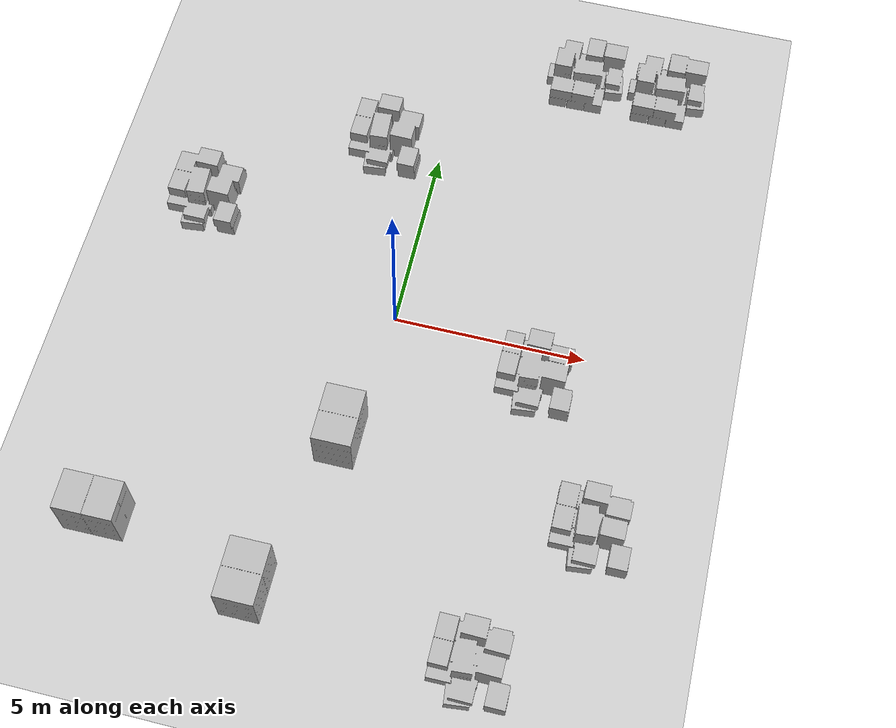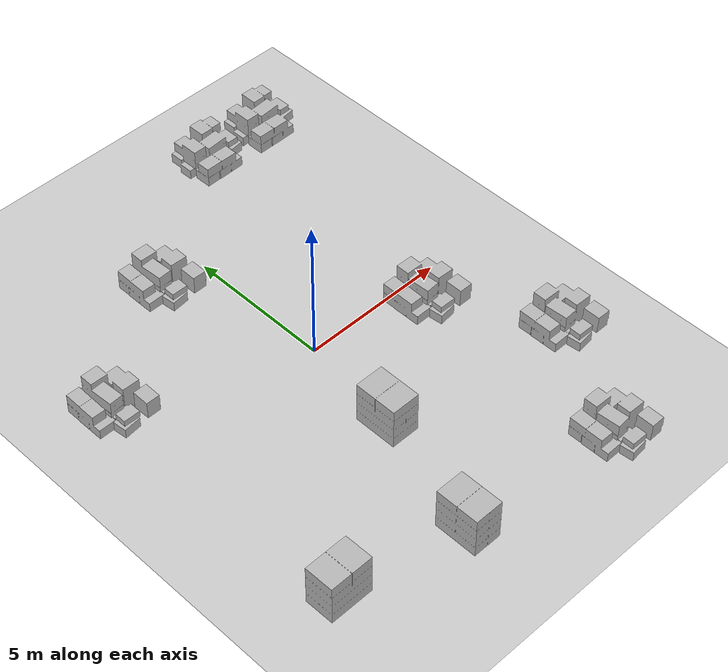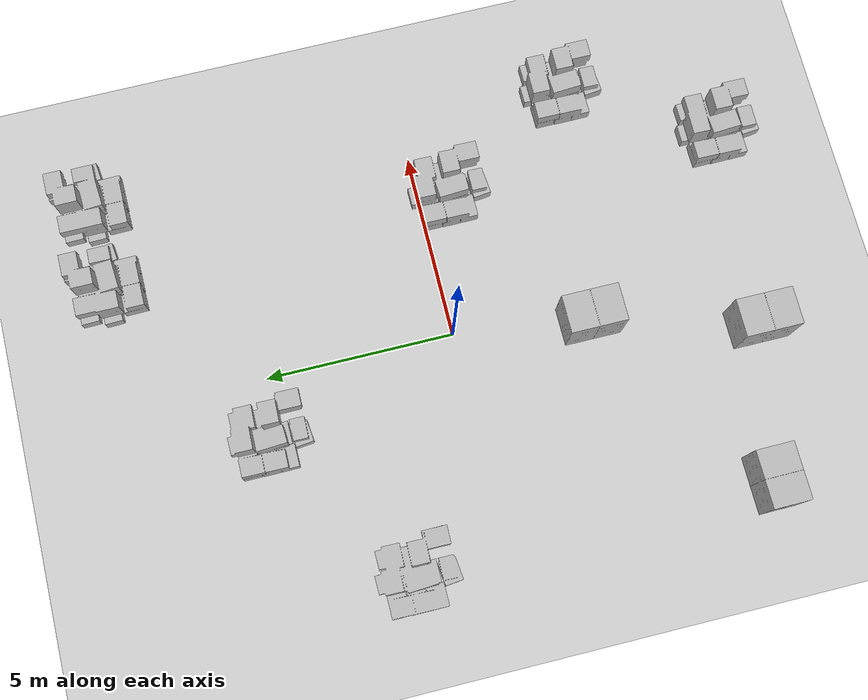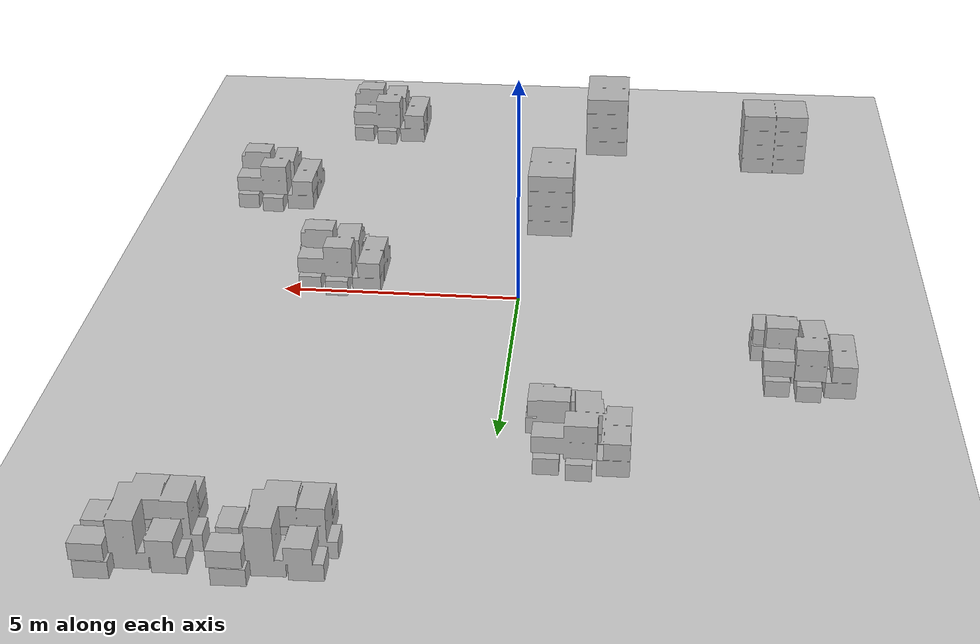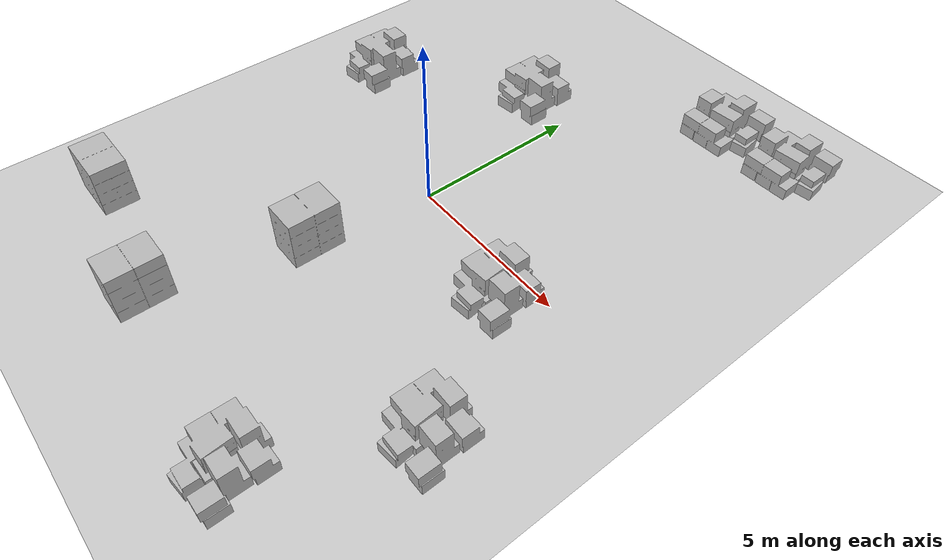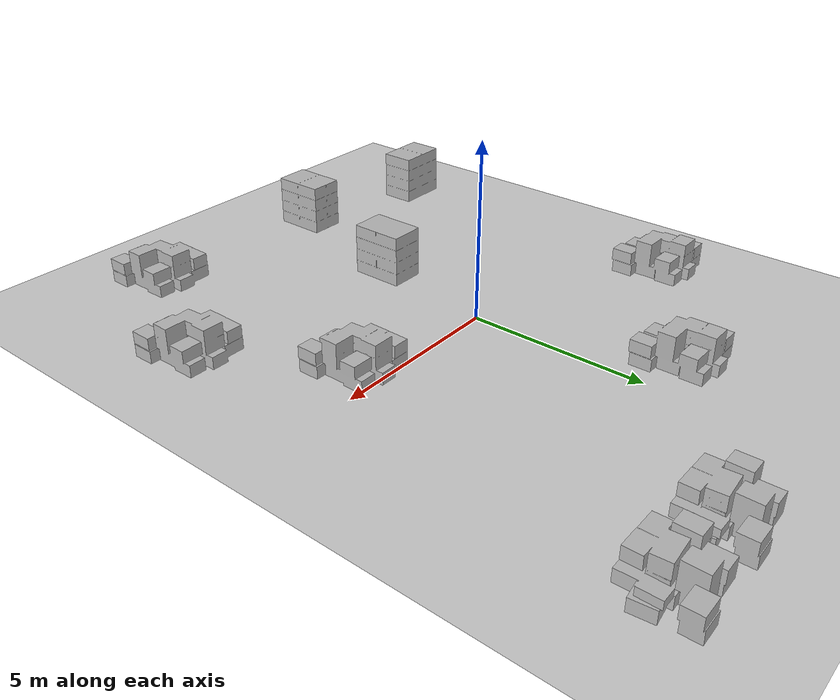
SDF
<sdf version="1.6">
 <world name="default">
  <model name="aws_robomaker_warehouse_ClutteringA_01_016">
   <include><uri>model://aws_robomaker_warehouse_ClutteringA_01</uri></include>
   <pose>5.708138 8.616844 -0.017477 0 0 0</pose>
  </model>
  <model name="aws_robomaker_warehouse_ClutteringA_01_017">
   <include><uri>model://aws_robomaker_warehouse_ClutteringA_01</uri></include>
   <pose>3.408638 8.616844 -0.017477 0 0 0</pose>
  </model>
  <model name="aws_robomaker_warehouse_ClutteringA_01_018">
   <include><uri>model://aws_robomaker_warehouse_ClutteringA_01</uri></include>
   <pose>-1.491287 5.222435 -0.017477 0 0 -1.583185</pose>
  </model>
  <model name="aws_robomaker_warehouse_ClutteringD_01_005">
   <include><uri>model://aws_robomaker_warehouse_ClutteringD_01</uri></include>
   <pose>-1.634682 -7.811813 -0.319559 0 0 0</pose>
  </model>
  <light name="Warehouse_CeilingLight_003" type="point">
   <pose>0 0 9 0 0 0</pose>
   <diffuse>0.5 0.5 0.5 1</diffuse>
   <specular>0.2 0.2 0.2 1</specular>
   <attenuation>
    <range>800</range>
    <constant>0.2</constant>
    <linear>0.01</linear>
    <quadratic>0.001</quadratic>
   </attenuation>
   <direction>0.1 0.1 -1</direction>
  </light>
  <light type="directional" name="sun">
   <pose>0 0 10 0 0 0</pose>
   <diffuse>0.8 0.8 0.8 1</diffuse>
   <specular>0.2 0.2 0.2 1</specular>
   <attenuation>
    <range>1000</range>
    <constant>0.9</constant>
    <linear>0.01</linear>
    <quadratic>0.001</quadratic>
   </attenuation>
   <direction>-0.5 0.1 -0.9</direction>
  </light>
  <model name="ground_plane">
   <static>true</static>
   <link name="link">
    <collision name="collision"><geometry><plane><normal>0 0 1</normal></plane></geometry></collision>
    <visual name="visual">
     <geometry><plane><normal>0 0 1</normal><size>100 100</size></plane></geometry>
     <material>
      <ambient>0.8 0.8 0.8 1</ambient>
      <diffuse>0.8 0.8 0.8 1</diffuse>
      <specular>0.8 0.8 0.8 1</specular>
     </material>
    </visual>
   </link>
  </model>
  <model name="aws_robomaker_warehouse_ClutteringA_01_018_1">
   <model name="aws_robomaker_warehouse_ClutteringA_01">
    <link name="link">
     <inertial>
      <mass>2</mass>
      <inertia>
       <ixx>0.84099999999999997</ixx>
       <ixy>0</ixy>
       <ixz>0</ixz>
       <iyy>0.95399999999999996</iyy>
       <iyz>0</iyz>
       <izz>1.4219999999999999</izz>
      </inertia>
     </inertial>
     <collision name="collision">
      <geometry>
       <mesh>
        <uri>model://aws_robomaker_warehouse_ClutteringA_01/meshes/aws_robomaker_warehouse_ClutteringA_01_collision.DAE</uri>
        <scale>1 1 1</scale>
       </mesh>
      </geometry>
      <surface>
       <friction>
        <ode>
         <mu>0.59999999999999998</mu>
         <mu2>0.59999999999999998</mu2>
         <fdir1>0 0 0</fdir1>
         <slip1>0</slip1>
         <slip2>0</slip2>
        </ode>
        <torsional>
         <coefficient>1</coefficient>
         <patch_radius>0</patch_radius>
         <surface_radius>0</surface_radius>
         <use_patch_radius>true</use_patch_radius>
         <ode><slip>0</slip></ode>
        </torsional>
       </friction>
      </surface>
     </collision>
     <visual name="visual">
      <geometry>
       <mesh>
        <uri>model://aws_robomaker_warehouse_ClutteringA_01/meshes/aws_robomaker_warehouse_ClutteringA_01_visual.DAE</uri>
       </mesh>
      </geometry>
      <meta><layer>1</layer></meta>
     </visual>
    </link>
    <static>true</static>
   </model>
   <pose>-5.7654810196886075 2.3644457504116887 -0.017477000132203102 0 0 -1.5831900502372414</pose>
   <static>false</static>
  </model>
  <model name="aws_robomaker_warehouse_ClutteringA_01_018_2">
   <model name="aws_robomaker_warehouse_ClutteringA_01">
    <link name="link">
     <inertial>
      <mass>2</mass>
      <inertia>
       <ixx>0.84099999999999997</ixx>
       <ixy>0</ixy>
       <ixz>0</ixz>
       <iyy>0.95399999999999996</iyy>
       <iyz>0</iyz>
       <izz>1.4219999999999999</izz>
      </inertia>
     </inertial>
     <collision name="collision">
      <geometry>
       <mesh>
        <uri>model://aws_robomaker_warehouse_ClutteringA_01/meshes/aws_robomaker_warehouse_ClutteringA_01_collision.DAE</uri>
        <scale>1 1 1</scale>
       </mesh>
      </geometry>
      <surface>
       <friction>
        <ode>
         <mu>0.59999999999999998</mu>
         <mu2>0.59999999999999998</mu2>
         <fdir1>0 0 0</fdir1>
         <slip1>0</slip1>
         <slip2>0</slip2>
        </ode>
        <torsional>
         <coefficient>1</coefficient>
         <patch_radius>0</patch_radius>
         <surface_radius>0</surface_radius>
         <use_patch_radius>true</use_patch_radius>
         <ode><slip>0</slip></ode>
        </torsional>
       </friction>
      </surface>
     </collision>
     <visual name="visual">
      <geometry>
       <mesh>
        <uri>model://aws_robomaker_warehouse_ClutteringA_01/meshes/aws_robomaker_warehouse_ClutteringA_01_visual.DAE</uri>
       </mesh>
      </geometry>
      <meta><layer>1</layer></meta>
     </visual>
    </link>
    <static>true</static>
   </model>
   <pose>6.0333864345675332 -4.5127992416595522 -0.017477000132203102 0 0 -1.5831900502372414</pose>
   <static>false</static>
  </model>
  <model name="aws_robomaker_warehouse_ClutteringA_01_018_3">
   <model name="aws_robomaker_warehouse_ClutteringA_01">
    <link name="link">
     <inertial>
      <mass>2</mass>
      <inertia>
       <ixx>0.84099999999999997</ixx>
       <ixy>0</ixy>
       <ixz>0</ixz>
       <iyy>0.95399999999999996</iyy>
       <iyz>0</iyz>
       <izz>1.4219999999999999</izz>
      </inertia>
     </inertial>
     <collision name="collision">
      <geometry>
       <mesh>
        <uri>model://aws_robomaker_warehouse_ClutteringA_01/meshes/aws_robomaker_warehouse_ClutteringA_01_collision.DAE</uri>
        <scale>1 1 1</scale>
       </mesh>
      </geometry>
      <surface>
       <friction>
        <ode>
         <mu>0.59999999999999998</mu>
         <mu2>0.59999999999999998</mu2>
         <fdir1>0 0 0</fdir1>
         <slip1>0</slip1>
         <slip2>0</slip2>
        </ode>
        <torsional>
         <coefficient>1</coefficient>
         <patch_radius>0</patch_radius>
         <surface_radius>0</surface_radius>
         <use_patch_radius>true</use_patch_radius>
         <ode><slip>0</slip></ode>
        </torsional>
       </friction>
      </surface>
     </collision>
     <visual name="visual">
      <geometry>
       <mesh>
        <uri>model://aws_robomaker_warehouse_ClutteringA_01/meshes/aws_robomaker_warehouse_ClutteringA_01_visual.DAE</uri>
       </mesh>
      </geometry>
      <meta><layer>1</layer></meta>
     </visual>
    </link>
    <static>true</static>
   </model>
   <pose>3.9260702140105392 -8.347216101429991 -0.017477000132203102 0 0 -1.5831900502372414</pose>
   <static>false</static>
  </model>
  <model name="aws_robomaker_warehouse_ClutteringA_01_018_4">
   <model name="aws_robomaker_warehouse_ClutteringA_01">
    <link name="link">
     <inertial>
      <mass>2</mass>
      <inertia>
       <ixx>0.84099999999999997</ixx>
       <ixy>0</ixy>
       <ixz>0</ixz>
       <iyy>0.95399999999999996</iyy>
       <iyz>0</iyz>
       <izz>1.4219999999999999</izz>
      </inertia>
     </inertial>
     <collision name="collision">
      <geometry>
       <mesh>
        <uri>model://aws_robomaker_warehouse_ClutteringA_01/meshes/aws_robomaker_warehouse_ClutteringA_01_collision.DAE</uri>
        <scale>1 1 1</scale>
       </mesh>
      </geometry>
      <surface>
       <friction>
        <ode>
         <mu>0.59999999999999998</mu>
         <mu2>0.59999999999999998</mu2>
         <fdir1>0 0 0</fdir1>
         <slip1>0</slip1>
         <slip2>0</slip2>
        </ode>
        <torsional>
         <coefficient>1</coefficient>
         <patch_radius>0</patch_radius>
         <surface_radius>0</surface_radius>
         <use_patch_radius>true</use_patch_radius>
         <ode><slip>0</slip></ode>
        </torsional>
       </friction>
      </surface>
     </collision>
     <visual name="visual">
      <geometry>
       <mesh>
        <uri>model://aws_robomaker_warehouse_ClutteringA_01/meshes/aws_robomaker_warehouse_ClutteringA_01_visual.DAE</uri>
       </mesh>
      </geometry>
      <meta><layer>1</layer></meta>
     </visual>
    </link>
    <static>true</static>
   </model>
   <pose>3.911689295605385 -0.84853580859507827 -0.017477000132203102 0 0 -1.5831900502372414</pose>
   <static>false</static>
  </model>
  <model name="aws_robomaker_warehouse_ClutteringD_01_005_1">
   <model name="aws_robomaker_warehouse_ClutteringD_01">
    <link name="link">
     <inertial>
      <mass>1</mass>
      <inertia>
       <ixx>1.5580000000000001</ixx>
       <ixy>0</ixy>
       <ixz>0</ixz>
       <iyy>1.821</iyy>
       <iyz>0</iyz>
       <izz>1.8919999999999999</izz>
      </inertia>
     </inertial>
     <collision name="collision">
      <geometry>
       <mesh>
        <uri>model://aws_robomaker_warehouse_ClutteringD_01/meshes/aws_robomaker_warehouse_ClutteringD_01_collision.DAE</uri>
        <scale>1 1 1</scale>
       </mesh>
      </geometry>
      <surface>
       <friction>
        <ode>
         <mu>0.59999999999999998</mu>
         <mu2>0.59999999999999998</mu2>
         <fdir1>0 0 0</fdir1>
         <slip1>0</slip1>
         <slip2>0</slip2>
        </ode>
        <torsional>
         <coefficient>1</coefficient>
         <patch_radius>0</patch_radius>
         <surface_radius>0</surface_radius>
         <use_patch_radius>true</use_patch_radius>
         <ode><slip>0</slip></ode>
        </torsional>
       </friction>
      </surface>
     </collision>
     <visual name="visual">
      <geometry>
       <mesh>
        <uri>model://aws_robomaker_warehouse_ClutteringD_01/meshes/aws_robomaker_warehouse_ClutteringD_01_visual.DAE</uri>
       </mesh>
      </geometry>
      <meta><layer>1</layer></meta>
     </visual>
    </link>
    <static>true</static>
   </model>
   <pose>-0.49226806974502502 -3.5473407940529662 -0.3195590078830719 0 0 0</pose>
   <static>false</static>
  </model>
  <model name="aws_robomaker_warehouse_ClutteringD_01_005_2">
   <model name="aws_robomaker_warehouse_ClutteringD_01">
    <link name="link">
     <inertial>
      <mass>1</mass>
      <inertia>
       <ixx>1.5580000000000001</ixx>
       <ixy>0</ixy>
       <ixz>0</ixz>
       <iyy>1.821</iyy>
       <iyz>0</iyz>
       <izz>1.8919999999999999</izz>
      </inertia>
     </inertial>
     <collision name="collision">
      <geometry>
       <mesh>
        <uri>model://aws_robomaker_warehouse_ClutteringD_01/meshes/aws_robomaker_warehouse_ClutteringD_01_collision.DAE</uri>
        <scale>1 1 1</scale>
       </mesh>
      </geometry>
      <surface>
       <friction>
        <ode>
         <mu>0.59999999999999998</mu>
         <mu2>0.59999999999999998</mu2>
         <fdir1>0 0 0</fdir1>
         <slip1>0</slip1>
         <slip2>0</slip2>
        </ode>
        <torsional>
         <coefficient>1</coefficient>
         <patch_radius>0</patch_radius>
         <surface_radius>0</surface_radius>
         <use_patch_radius>true</use_patch_radius>
         <ode><slip>0</slip></ode>
        </torsional>
       </friction>
      </surface>
     </collision>
     <visual name="visual">
      <geometry>
       <mesh>
        <uri>model://aws_robomaker_warehouse_ClutteringD_01/meshes/aws_robomaker_warehouse_ClutteringD_01_visual.DAE</uri>
       </mesh>
      </geometry>
      <meta><layer>1</layer></meta>
     </visual>
    </link>
    <static>true</static>
   </model>
   <pose>-5.6653457854494897 -6.9158317258066315 -0.3195590078830719 0 0 -1.5631400710447547</pose>
   <static>false</static>
  </model>
 </world>
</sdf>

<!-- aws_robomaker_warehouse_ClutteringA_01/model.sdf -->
<sdf version="1.6">
  <model name="aws_robomaker_warehouse_ClutteringA_01">
    <link name="link">
      <inertial>
        <mass>2</mass>
        <inertia>
          <ixx>0.841</ixx>
          <ixy>0</ixy>
          <ixz>0</ixz>
          <iyy>0.954</iyy>
          <iyz>0</iyz>
          <izz>1.422</izz>
        </inertia>
      </inertial>
      <collision name="collision">
        <geometry>
          <mesh>
            <uri>file://models/aws_robomaker_warehouse_ClutteringA_01/meshes/aws_robomaker_warehouse_ClutteringA_01_collision.DAE</uri>
            <scale>1 1 1</scale>
          </mesh>
        </geometry>
        <surface>
          <friction>
            <ode>
              <mu>0.6</mu>
              <mu2>0.6</mu2>
              <fdir1>0 0 0</fdir1>
              <slip1>0</slip1>
              <slip2>0</slip2>
            </ode>
            <torsional>
              <coefficient>1</coefficient>
              <patch_radius>0</patch_radius>
              <surface_radius>0</surface_radius>
              <use_patch_radius>1</use_patch_radius>
              <ode>
                <slip>0</slip>
              </ode>
            </torsional>
          </friction>
        </surface>
      </collision>
      <visual name="visual">
        <geometry>
          <mesh>
            <uri>file://models/aws_robomaker_warehouse_ClutteringA_01/meshes/aws_robomaker_warehouse_ClutteringA_01_visual.DAE</uri>
          </mesh>
        </geometry>
        <meta> <layer> 1 </layer></meta>
      </visual>
    </link>
    <static>1</static>
  </model>
</sdf>

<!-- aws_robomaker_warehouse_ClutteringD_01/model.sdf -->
<sdf version="1.6">
  <model name="aws_robomaker_warehouse_ClutteringD_01">
    <link name="link">
      <inertial>
        <mass>1</mass>
        <inertia>
          <ixx>1.558</ixx>
          <ixy>0</ixy>
          <ixz>0</ixz>
          <iyy>1.821</iyy>
          <iyz>0</iyz>
          <izz>1.892</izz>
        </inertia>
      </inertial>
      <collision name="collision">
        <geometry>
          <mesh>
            <uri>file://models/aws_robomaker_warehouse_ClutteringD_01/meshes/aws_robomaker_warehouse_ClutteringD_01_collision.DAE</uri>
            <scale>1 1 1</scale>
          </mesh>
        </geometry>
        <surface>
          <friction>
            <ode>
              <mu>0.6</mu>
              <mu2>0.6</mu2>
              <fdir1>0 0 0</fdir1>
              <slip1>0</slip1>
              <slip2>0</slip2>
            </ode>
            <torsional>
              <coefficient>1</coefficient>
              <patch_radius>0</patch_radius>
              <surface_radius>0</surface_radius>
              <use_patch_radius>1</use_patch_radius>
              <ode>
                <slip>0</slip>
              </ode>
            </torsional>
          </friction>
        </surface>
      </collision>
      <visual name="visual">
	    <geometry>
          <mesh>
            <uri>file://models/aws_robomaker_warehouse_ClutteringD_01/meshes/aws_robomaker_warehouse_ClutteringD_01_visual.DAE</uri>
          </mesh>
        </geometry>
      <meta> <layer> 1 </layer></meta>
</visual>
    </link>
<static>1</static>
  </model>
</sdf>
